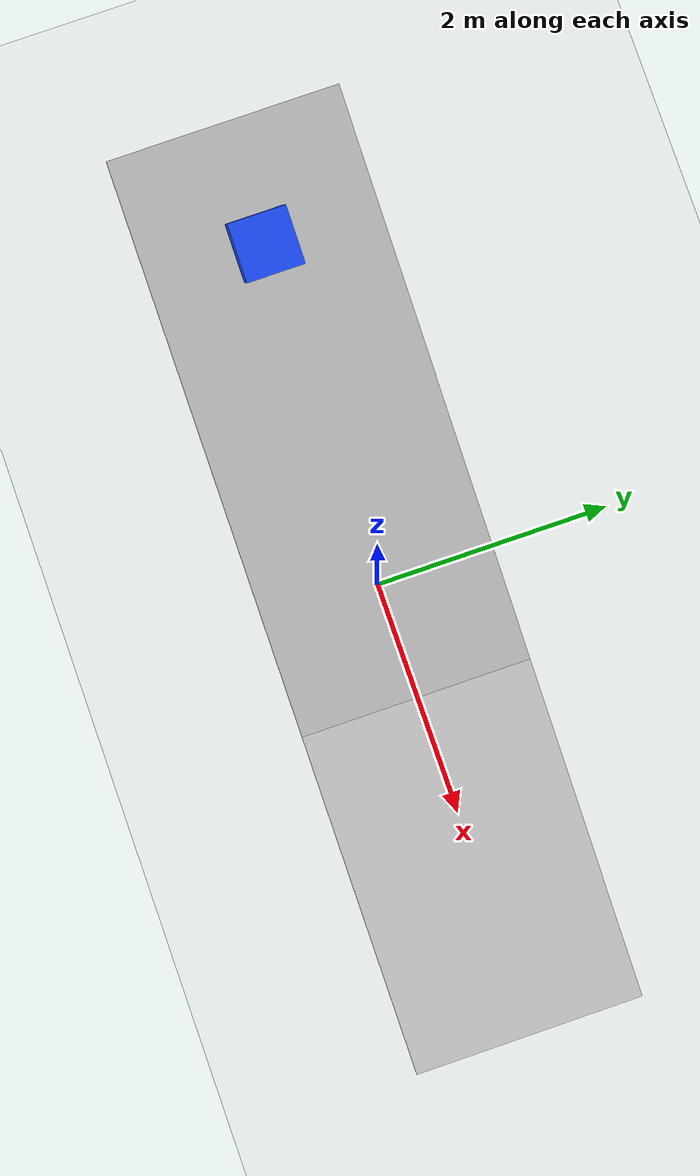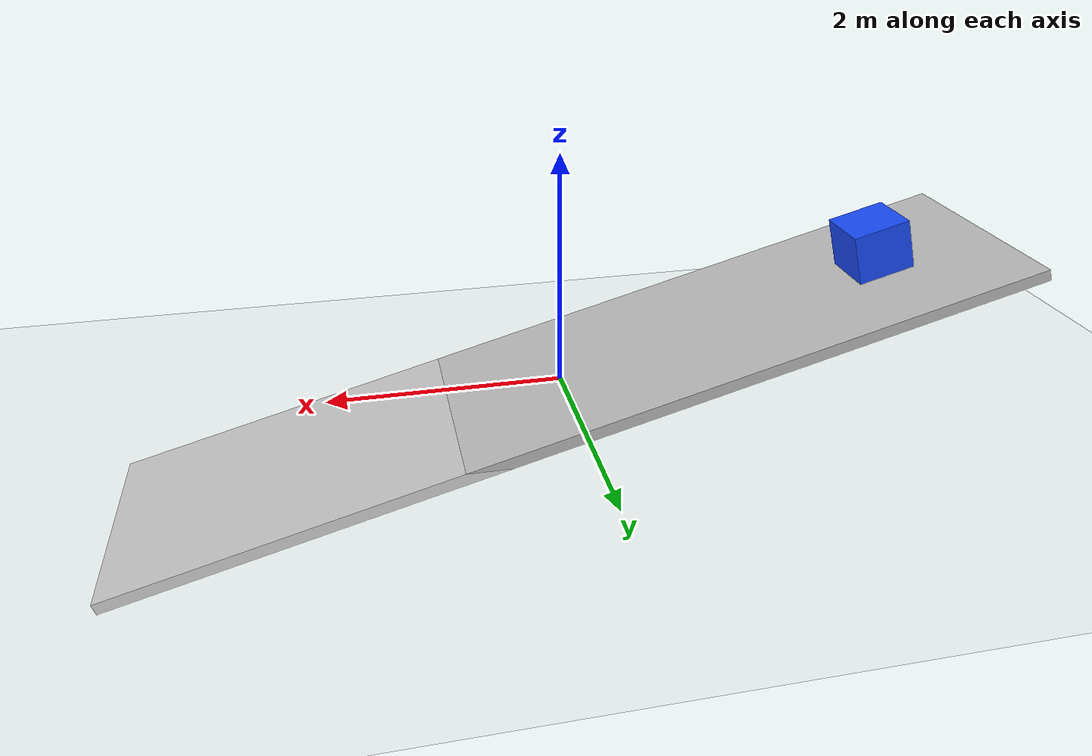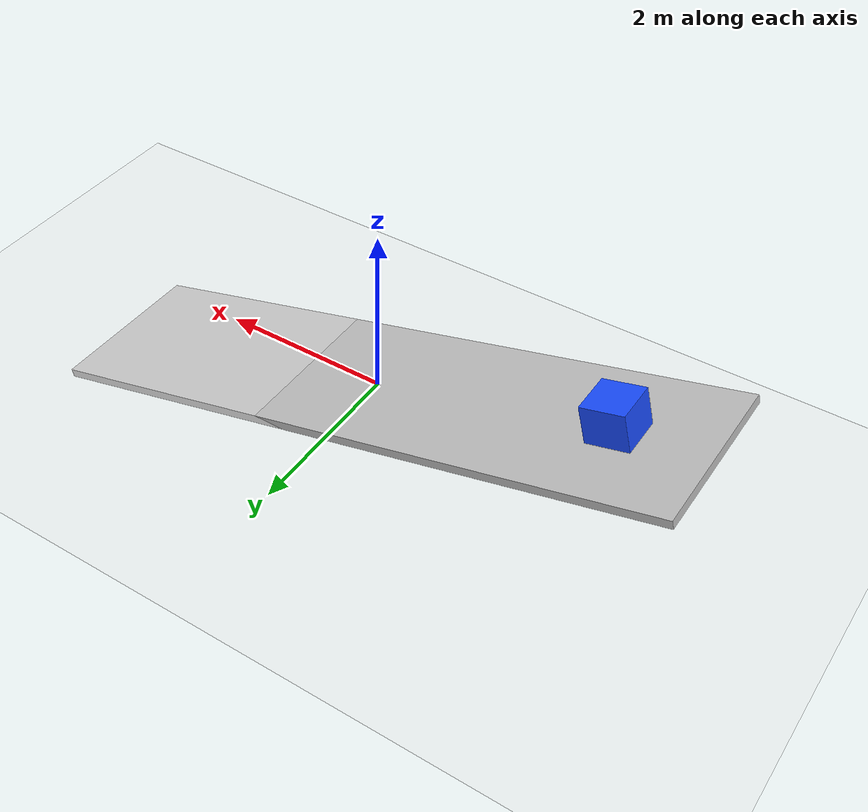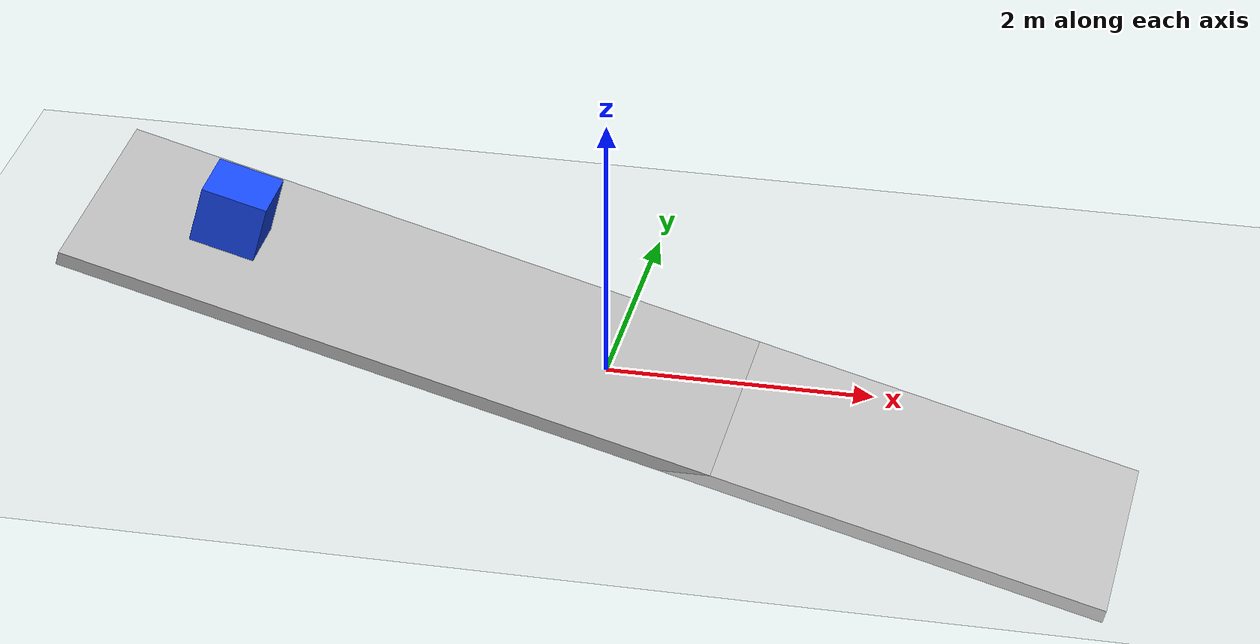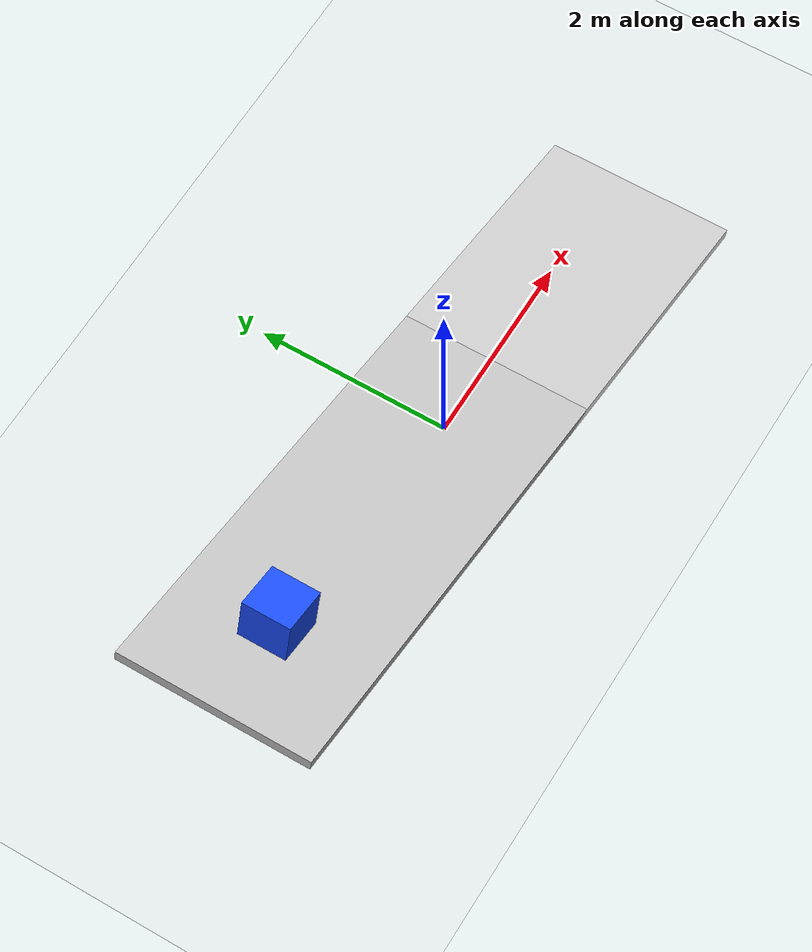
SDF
<?xml version="1.0"?>
<sdf version="1.9">
  <world name="friction_test">

    <physics type="dart">
      <max_step_size>0.001</max_step_size>
      <real_time_factor>1.0</real_time_factor>
      <real_time_update_rate>1000</real_time_update_rate>
    </physics>

    <gravity>0 0 -9.81</gravity>

    <!-- Camera view -->
    <gui fullscreen="0">
      <camera name="user_camera">
        <pose>0 -8 5 0 0.55 1.5708</pose>
        <view_controller>orbit</view_controller>
      </camera>
    </gui>

    <!-- Inclined plane: friction test surface -->
    <!-- 실험 1에서 mu/mu2 값을 0.1 / 0.5 / 1.0으로 변경 -->
    <model name="friction_slope">
      <static>true</static>
      <pose>0 0 0 0 0.2618 0</pose>

      <link name="slope_link">
        <collision name="slope_collision">
          <geometry>
            <box>
              <size>8.0 2.0 0.1</size>
            </box>
          </geometry>

          <surface>
            <friction>
              <ode>
                <mu>1.0</mu>
                <mu2>1.0</mu2>
                <slip1>0.0</slip1>
                <slip2>0.0</slip2>
              </ode>
            </friction>
            <contact>
              <ode>
                <kp>1e6</kp>
                <kd>100</kd>
              </ode>
            </contact>
          </surface>
        </collision>

        <visual name="slope_visual">
          <geometry>
            <box>
              <size>8.0 2.0 0.1</size>
            </box>
          </geometry>
          <material>
            <ambient>0.75 0.75 0.75 1</ambient>
            <diffuse>0.75 0.75 0.75 1</diffuse>
          </material>
        </visual>
      </link>
    </model>

    <!-- Sliding box -->
    <model name="sliding_box">
      <static>false</static>
      <pose>-2.8 0 1.0 0 0.2618 0</pose>

      <link name="box_link">
        <inertial>
          <mass>1.0</mass>
          <inertia>
            <ixx>0.0417</ixx>
            <iyy>0.0417</iyy>
            <izz>0.0417</izz>
            <ixy>0.0</ixy>
            <ixz>0.0</ixz>
            <iyz>0.0</iyz>
          </inertia>
        </inertial>

        <collision name="box_collision">
          <geometry>
            <box>
              <size>0.5 0.5 0.5</size>
            </box>
          </geometry>

          <surface>
            <friction>
              <ode>
                <mu>1.0</mu>
                <mu2>1.0</mu2>
                <slip1>0.0</slip1>
                <slip2>0.0</slip2>
              </ode>
            </friction>
            <contact>
              <ode>
                <kp>1e6</kp>
                <kd>100</kd>
              </ode>
            </contact>
          </surface>
        </collision>

        <visual name="box_visual">
          <geometry>
            <box>
              <size>0.5 0.5 0.5</size>
            </box>
          </geometry>
          <material>
            <ambient>0.1 0.3 1.0 1</ambient>
            <diffuse>0.1 0.3 1.0 1</diffuse>
          </material>
        </visual>
      </link>
    </model>

    <!-- Ground plane under the slope -->
    <model name="ground_plane">
      <static>true</static>
      <pose>0 0 -0.2 0 0 0</pose>
      <link name="ground_link">
        <collision name="ground_collision">
          <geometry>
            <plane>
              <normal>0 0 1</normal>
              <size>50 50</size>
            </plane>
          </geometry>
        </collision>
        <visual name="ground_visual">
          <geometry>
            <plane>
              <normal>0 0 1</normal>
              <size>50 50</size>
            </plane>
          </geometry>
          <material>
            <ambient>0.9 0.9 0.9 1</ambient>
            <diffuse>0.9 0.9 0.9 1</diffuse>
          </material>
        </visual>
      </link>
    </model>

    <light name="sun" type="directional">
      <pose>0 0 10 0 0 0</pose>
      <direction>-0.5 0.1 -0.9</direction>
      <diffuse>1 1 1 1</diffuse>
      <specular>0.1 0.1 0.1 1</specular>
      <cast_shadows>true</cast_shadows>
    </light>

  </world>
</sdf>
